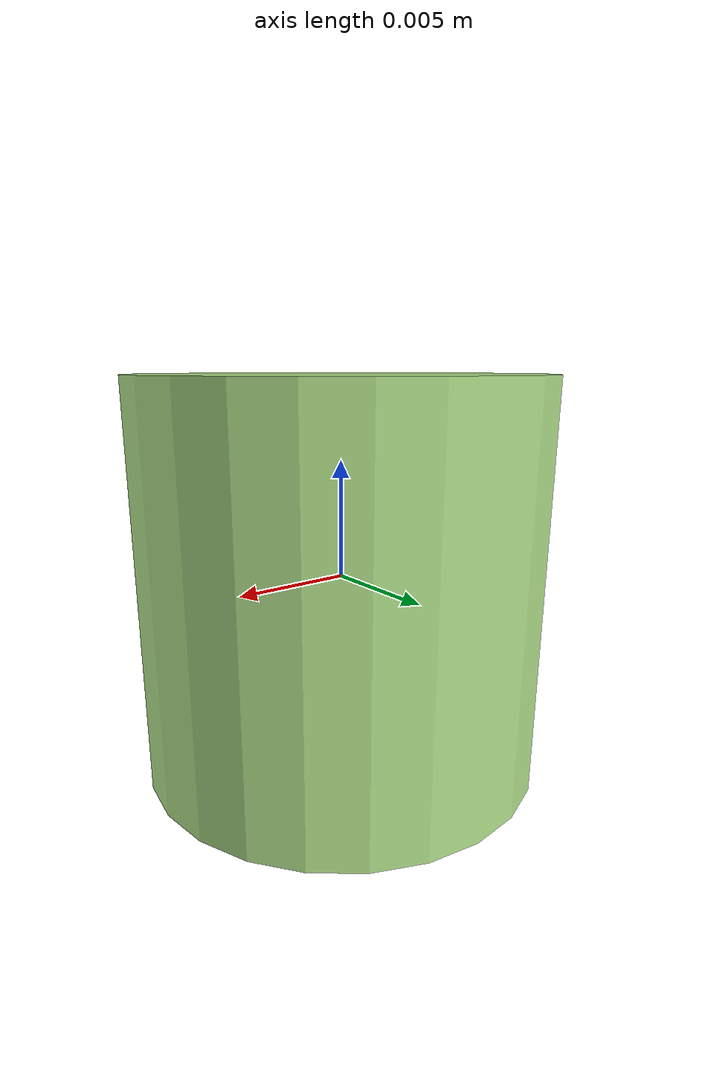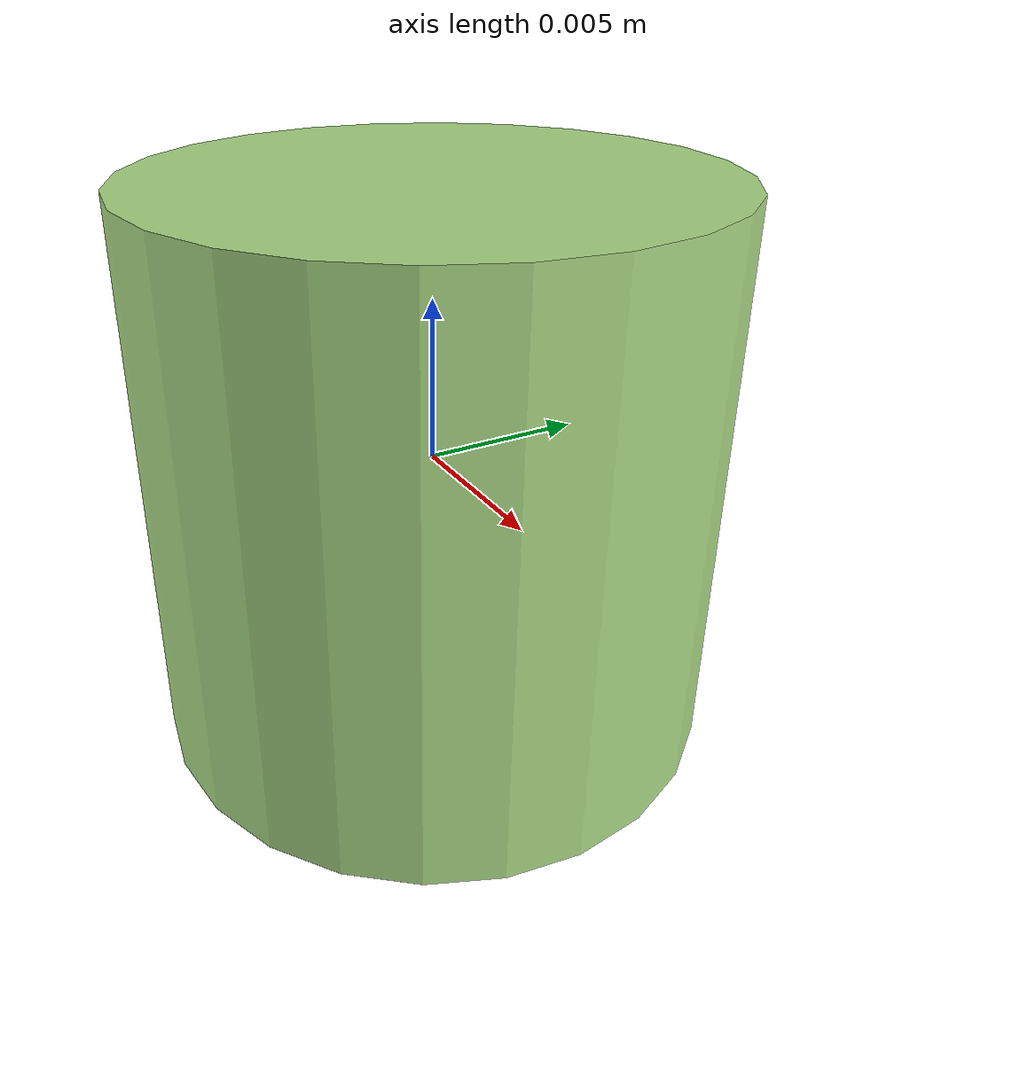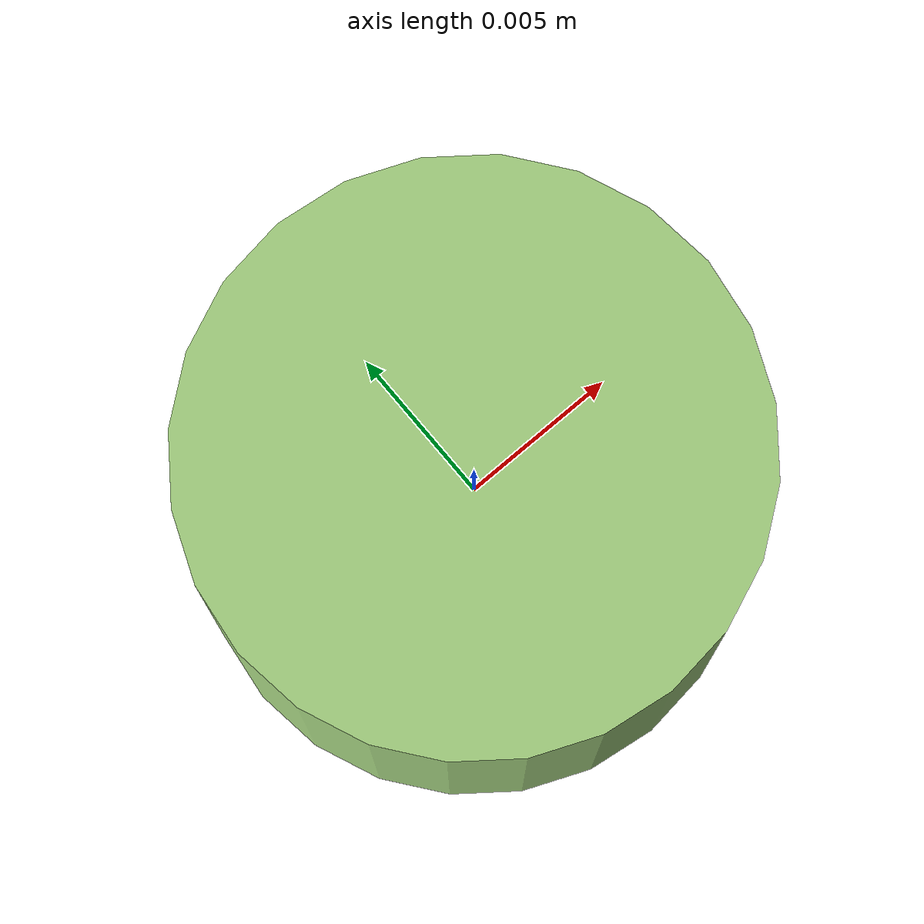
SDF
<?xml version="1.0" ?>
<!-- |    This document was autogenerated by xmacro from data/veggie_base.sdf.xacro    | -->
<!-- |    EDITING THIS FILE BY HAND IS NOT RECOMMENDED                                 | -->
<sdf version="1.8">
	<!-- Parameters -->
	<!-- Base -->
	<!-- Joint 0 -->
	<!-- Link 1 -->
	<!-- Joint 1 -->
	<!-- Link 2 -->
	<!-- Primitives -->
	<!-- All dimensions are half -->
	<!-- Object -->
	<model name="veggie">
		<!-- link0 -->
		<link name="link0">
			<inertial>
				<mass>0.003974455301121969</mass>
				<inertia>
					<ixx>1.6947935500829592e-07</ixx>
					<ixy>0</ixy>
					<ixz>0</ixz>
					<iyy>1.6947935500829592e-07</iyy>
					<iyz>0</iyz>
					<izz>1.4811475769231893e-07</izz>
				</inertia>
			</inertial>
			<visual name="link0_visual">
				<pose>0 0 0 0 0 0</pose>
				<geometry>
					<cylinder>
						<radius>0.008633270638512314</radius>
						<length>0.016973680290593637</length>
					</cylinder>
				</geometry>
				<material>
					<ambient>0.659 0.839 0.514 1</ambient>
					<diffuse>0.659 0.839 0.514 1</diffuse>
					<specular>0 0 0 0</specular>
					<emissive>0 0 0 1</emissive>
				</material>
			</visual>
			<collision name="link0_collision">
				<pose>0 0 0 0 0 0 </pose>
				<geometry>
					<cylinder>
						<radius>0.008633270638512314</radius>
						<length>0.016973680290593637</length>
					</cylinder>
				</geometry>
				<drake:proximity_properties>
					<drake:compliant_hydroelastic/>
					<drake:mesh_resolution_hint>0.002</drake:mesh_resolution_hint>
					<drake:hydroelastic_modulus>1e6</drake:hydroelastic_modulus>
					<drake:hunt_crossley_dissipation>1</drake:hunt_crossley_dissipation>
					<drake:mu_static>0.3</drake:mu_static>
					<drake:mu_dynamic>0.3</drake:mu_dynamic>
				</drake:proximity_properties>
			</collision>
		</link>
		<!-- link1 -->
		<!-- link2 -->
	</model>
</sdf>
